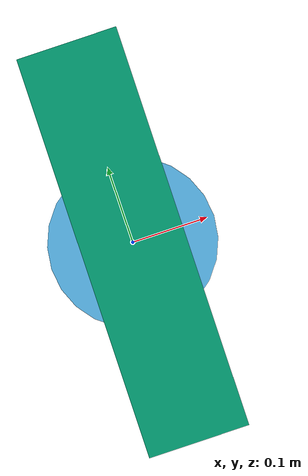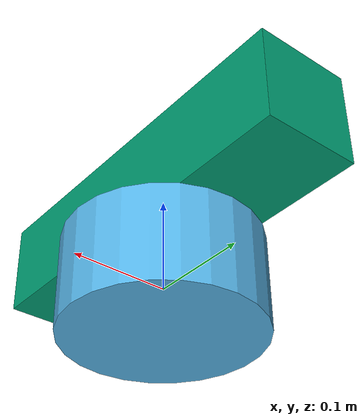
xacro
<?xml version="1.0"?>
<robot xmlns:xacro="http://www.ros.org/wiki/xacro" name="basic">
  <!-- Import object's inertias -->
  <xacro:include filename= "inertias.xacro"/>

  <link name="base_link" />

  <link name="base_footprint">
    <!-- Visual tag -->
    <visual>
      <origin xyz="0 0 0" rpy="0 0 0" />
      <geometry>
        <cylinder length="0.1" radius="0.1"/>
      </geometry>
    </visual>
    <!-- Collision tag -->
    <collision>
      <origin xyz="0 0 0" rpy="0 0 0" />
      <geometry>
        <cylinder length="0.1" radius="0.1"/>
      </geometry>
    </collision>
    <!-- Inertial tag -->
    <xacro:inertial_cylinder mass="1.0" length="0.1" radius="0.1">
        <origin xyz= "0 0 0" rpy="0 0 0" />
    </xacro:inertial_cylinder>
  </link>

  <joint name="joint_base" type="fixed">
    <origin xyz="0 0 0" rpy="0 0 0" />
    <parent link="base_link" />
    <child link="base_footprint"  />
    <axis xyz="0 0 0" />
  </joint>

  <link name="final_link">
    <!-- Visual tag -->
    <visual>
      <origin xyz="0 0 0" rpy="0 0 0" />
      <geometry>
        <box size="0.1 0.4 0.1"/>
      </geometry>
    </visual>
    <!-- Collision tag -->
    <collision>
      <origin xyz="0 0 0" rpy="0 0 0" />
      <geometry>
        <box size="0.1 0.4 0.1"/>
      </geometry>
    </collision>
    <!-- Inertial tag -->
    <xacro:inertial_box mass="1.2" x="0.1" y="0.4" z="0.1">
        <origin xyz="0.0 0 0.0" rpy="0 0 0" />
    </xacro:inertial_box>
  </link>

  <joint name="q" type="revolute">
    <axis xyz="0 0 1" />
    <origin xyz="0 0 0.1" rpy="0 0 0" />
    <parent link="base_footprint"/>
    <child link="final_link"/>
    <limit lower="-0.7854" upper="0.7854" effort="10.0" velocity="10.0"/>
  </joint>
</robot>

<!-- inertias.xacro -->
<robot xmlns:xacro="http://www.ros.org/wiki/xacro" >
    <xacro:macro name="inertial_sphere" params="mass radius *origin">
        <inertial>
            <xacro:insert_block name="origin"/>
            <mass value="${mass}" />
            <inertia ixx="${(2/5) * mass * (radius*radius)}" ixy="0.0" ixz="0.0"
                    iyy="${(2/5) * mass * (radius*radius)}" iyz="0.0"
                    izz="${(2/5) * mass * (radius*radius)}" />
        </inertial>
    </xacro:macro>

    <xacro:macro name="inertial_box" params="mass x y z *origin">
        <inertial>
            <xacro:insert_block name="origin"/>
            <mass value="${mass}" />
            <inertia ixx="${(1/12) * mass * (y*y+z*z)}" ixy="0.0" ixz="0.0"
                    iyy="${(1/12) * mass * (x*x+z*z)}" iyz="0.0"
                    izz="${(1/12) * mass * (x*x+y*y)}" />
        </inertial>
    </xacro:macro>

    <xacro:macro name="inertial_cylinder" params="mass length radius *origin">
        <inertial>
            <xacro:insert_block name="origin"/>
            <mass value="${mass}" />
            <inertia ixx="${(1/12) * mass * (3*radius*radius + length*length)}" ixy="0.0" ixz="0.0"
                    iyy="${(1/12) * mass * (3*radius*radius + length*length)}" iyz="0.0"
                    izz="${(1/2) * mass * (radius*radius)}" />
        </inertial>
    </xacro:macro>
</robot>
